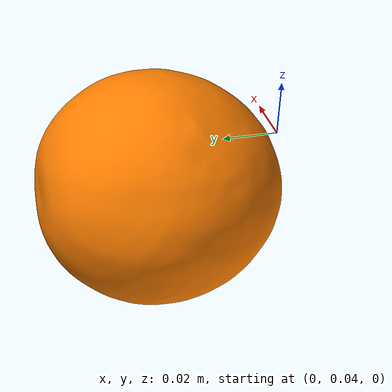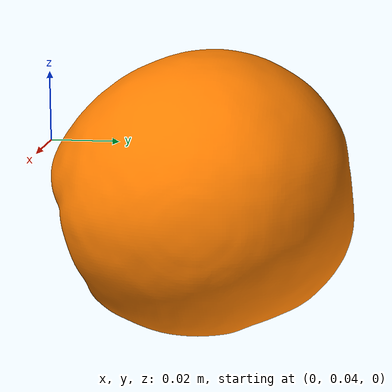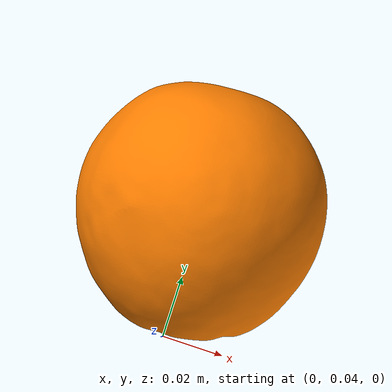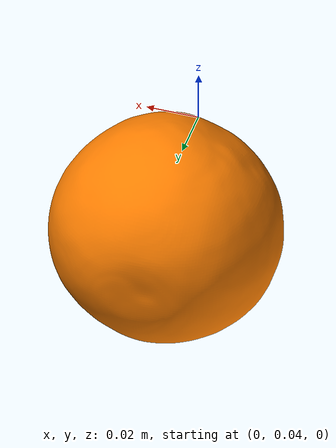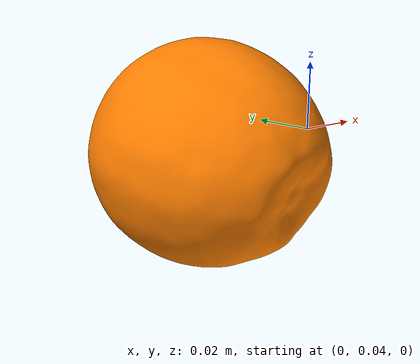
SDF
<?xml version="1.0"?>
<sdf version="1.6">
  <model name="orange">
    <static>false</static>
    <link name="link">
      <inertial>
        <mass>0.200</mass>
        <inertia>
          <ixx>0.000267</ixx>
          <iyy>0.000267</iyy>
          <izz>0.000267</izz>
        </inertia>
      </inertial>
      <visual name="visual">
        <geometry>
          <mesh>
            <uri>model://orange/orange.stl</uri>
            <scale>0.001 0.001 0.001</scale>
          </mesh>
        </geometry>
        <material>
          <ambient>1.0 0.5 0.0 1</ambient>
          <diffuse>1.0 0.5 0.0 1</diffuse>
        </material>
      </visual>
      <collision name="collision">
        <geometry>
          <mesh>
            <uri>model://orange/orange.stl</uri>
            <scale>0.001 0.001 0.001</scale>
          </mesh>
        </geometry>
        <surface>
          <friction>
            <ode>
              <mu>0.8</mu>
              <mu2>0.8</mu2>
            </ode>
          </friction>
        </surface>
      </collision>
    </link>
  </model>
</sdf>
